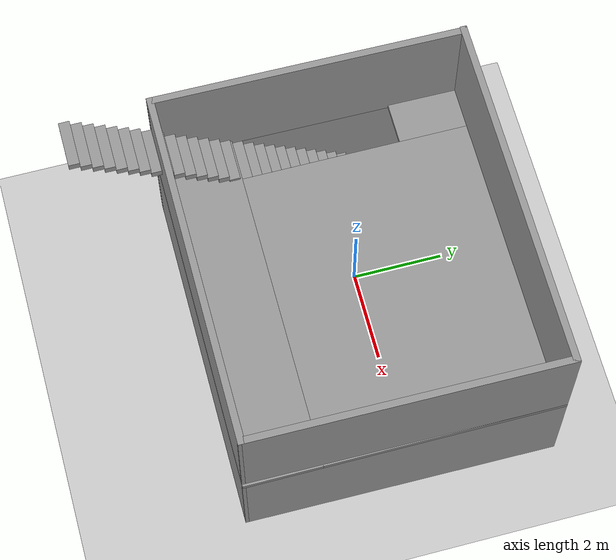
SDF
<sdf version="1.7">
 <world name="default">
  <light name="sun" type="directional">
   <pose>0 0 10 0 -0 0</pose>
   <diffuse>0.8 0.8 0.8 1</diffuse>
   <specular>0.2 0.2 0.2 1</specular>
   <attenuation>
    <range>1000</range>
    <constant>0.9</constant>
    <linear>0.01</linear>
    <quadratic>0.001</quadratic>
   </attenuation>
   <direction>-0.5 0.1 -0.9</direction>
   <spot><inner_angle>0</inner_angle><outer_angle>0</outer_angle><falloff>0</falloff></spot>
  </light>
  <model name="ground_plane">
   <static>1</static>
   <link name="link">
    <collision name="collision">
     <geometry><plane><normal>0 0 1</normal><size>100 100</size></plane></geometry>
     <surface>
      <contact><collide_bitmask>65535</collide_bitmask></contact>
      <friction><ode><mu>100</mu><mu2>50</mu2></ode></friction>
     </surface>
    </collision>
    <visual name="visual">
     <cast_shadows>0</cast_shadows>
     <geometry><plane><normal>0 0 1</normal><size>100 100</size></plane></geometry>
     <material>
      <script><uri>file://media/materials/scripts/gazebo.material</uri><name>Gazebo/Grey</name></script>
     </material>
    </visual>
   </link>
  </model>
  <gravity>0 0 -9.8</gravity>
  <magnetic_field>6e-06 2.3e-05 -4.2e-05</magnetic_field>
  <atmosphere type="adiabatic"/>
  <physics type="ode">
   <max_step_size>0.001</max_step_size>
   <real_time_factor>1</real_time_factor>
   <real_time_update_rate>1000</real_time_update_rate>
  </physics>
  <scene><ambient>0.4 0.4 0.4 1</ambient><background>0.7 0.7 0.7 1</background><shadows>1</shadows></scene>
  <spherical_coordinates>
   <surface_model>EARTH_WGS84</surface_model>
   <latitude_deg>0</latitude_deg>
   <longitude_deg>0</longitude_deg>
   <elevation>0</elevation>
   <heading_deg>0</heading_deg>
  </spherical_coordinates>
  <model name="Untitled">
   <pose>1.05675 -0.32363 0 0 -0 0</pose>
   <link name="Floor_0">
    <pose>0 0 2.5 0 -0 0</pose>
    <visual name="Floor_0_Visual_0">
     <pose>-3.84639 0 0.05 0 -0 0</pose>
     <geometry><box><size>0.11192 6.84394 0.1</size></box></geometry>
     <material>
      <script><uri>file://media/materials/scripts/gazebo.material</uri><name>Gazebo/Grey</name></script>
      <ambient>1 1 1 1</ambient>
     </material>
     <meta><layer>1</layer></meta>
    </visual>
    <collision name="Floor_0_Collision_0">
     <geometry><box><size>0.11192 6.84394 0.1</size></box></geometry>
     <pose>-3.84639 0 0.05 0 -0 0</pose>
    </collision>
    <visual name="Floor_0_Visual_1">
     <pose>0.05596 -2.57967 0.05 0 -0 0</pose>
     <geometry><box><size>7.69278 1.68459 0.1</size></box></geometry>
     <material>
      <script><uri>file://media/materials/scripts/gazebo.material</uri><name>Gazebo/Grey</name></script>
      <ambient>1 1 1 1</ambient>
     </material>
     <meta><layer>1</layer></meta>
    </visual>
    <collision name="Floor_0_Collision_1">
     <geometry><box><size>7.69278 1.68459 0.1</size></box></geometry>
     <pose>0.05596 -2.57967 0.05 0 -0 0</pose>
    </collision>
    <visual name="Floor_0_Visual_2">
     <pose>0.55596 0.842297 0.05 0 -0 0</pose>
     <geometry><box><size>6.69278 5.15934 0.1</size></box></geometry>
     <material>
      <script><uri>file://media/materials/scripts/gazebo.material</uri><name>Gazebo/Grey</name></script>
      <ambient>1 1 1 1</ambient>
     </material>
     <meta><layer>1</layer></meta>
    </visual>
    <collision name="Floor_0_Collision_2">
     <geometry><box><size>6.69278 5.15934 0.1</size></box></geometry>
     <pose>0.55596 0.842297 0.05 0 -0 0</pose>
    </collision>
    <visual name="Floor_0_Visual_3">
     <pose>-3.29043 2.5923 0.05 0 -0 0</pose>
     <geometry><box><size>1 1.65934 0.1</size></box></geometry>
     <material>
      <script><uri>file://media/materials/scripts/gazebo.material</uri><name>Gazebo/Grey</name></script>
      <ambient>1 1 1 1</ambient>
     </material>
     <meta><layer>1</layer></meta>
    </visual>
    <collision name="Floor_0_Collision_3">
     <geometry><box><size>1 1.65934 0.1</size></box></geometry>
     <pose>-3.29043 2.5923 0.05 0 -0 0</pose>
    </collision>
   </link>
   <link name="Stairs_0">
    <visual name="Stairs_0_Visual_0">
     <pose>-3.29043 1.64596 0.083333 0 -0 0</pose>
     <geometry><box><size>1 0.233333 0.166667</size></box></geometry>
     <material>
      <script><uri>file://media/materials/scripts/gazebo.material</uri><name>Gazebo/Grey</name></script>
      <ambient>1 1 1 1</ambient>
     </material>
     <meta><layer>0</layer></meta>
    </visual>
    <collision name="Stairs_0_Collision_0">
     <geometry><box><size>1 0.233333 0.166667</size></box></geometry>
     <pose>-3.29043 1.64596 0.083333 0 -0 0</pose>
    </collision>
    <visual name="Stairs_0_Visual_1">
     <pose>-3.29043 1.41263 0.25 0 -0 0</pose>
     <geometry><box><size>1 0.233333 0.166667</size></box></geometry>
     <material>
      <script><uri>file://media/materials/scripts/gazebo.material</uri><name>Gazebo/Grey</name></script>
      <ambient>1 1 1 1</ambient>
     </material>
     <meta><layer>0</layer></meta>
    </visual>
    <collision name="Stairs_0_Collision_1">
     <geometry><box><size>1 0.233333 0.166667</size></box></geometry>
     <pose>-3.29043 1.41263 0.25 0 -0 0</pose>
    </collision>
    <visual name="Stairs_0_Visual_2">
     <pose>-3.29043 1.17929 0.416667 0 -0 0</pose>
     <geometry><box><size>1 0.233333 0.166667</size></box></geometry>
     <material>
      <script><uri>file://media/materials/scripts/gazebo.material</uri><name>Gazebo/Grey</name></script>
      <ambient>1 1 1 1</ambient>
     </material>
     <meta><layer>0</layer></meta>
    </visual>
    <collision name="Stairs_0_Collision_2">
     <geometry><box><size>1 0.233333 0.166667</size></box></geometry>
     <pose>-3.29043 1.17929 0.416667 0 -0 0</pose>
    </collision>
    <visual name="Stairs_0_Visual_3">
     <pose>-3.29043 0.94596 0.583333 0 -0 0</pose>
     <geometry><box><size>1 0.233333 0.166667</size></box></geometry>
     <material>
      <script><uri>file://media/materials/scripts/gazebo.material</uri><name>Gazebo/Grey</name></script>
      <ambient>1 1 1 1</ambient>
     </material>
     <meta><layer>0</layer></meta>
    </visual>
    <collision name="Stairs_0_Collision_3">
     <geometry><box><size>1 0.233333 0.166667</size></box></geometry>
     <pose>-3.29043 0.94596 0.583333 0 -0 0</pose>
    </collision>
    <visual name="Stairs_0_Visual_4">
     <pose>-3.29043 0.712626 0.75 0 -0 0</pose>
     <geometry><box><size>1 0.233333 0.166667</size></box></geometry>
     <material>
      <script><uri>file://media/materials/scripts/gazebo.material</uri><name>Gazebo/Grey</name></script>
      <ambient>1 1 1 1</ambient>
     </material>
     <meta><layer>0</layer></meta>
    </visual>
    <collision name="Stairs_0_Collision_4">
     <geometry><box><size>1 0.233333 0.166667</size></box></geometry>
     <pose>-3.29043 0.712626 0.75 0 -0 0</pose>
    </collision>
    <visual name="Stairs_0_Visual_5">
     <pose>-3.29043 0.479293 0.916667 0 -0 0</pose>
     <geometry><box><size>1 0.233333 0.166667</size></box></geometry>
     <material>
      <script><uri>file://media/materials/scripts/gazebo.material</uri><name>Gazebo/Grey</name></script>
      <ambient>1 1 1 1</ambient>
     </material>
     <meta><layer>0</layer></meta>
    </visual>
    <collision name="Stairs_0_Collision_5">
     <geometry><box><size>1 0.233333 0.166667</size></box></geometry>
     <pose>-3.29043 0.479293 0.916667 0 -0 0</pose>
    </collision>
    <visual name="Stairs_0_Visual_6">
     <pose>-3.29043 0.24596 1.08333 0 -0 0</pose>
     <geometry><box><size>1 0.233333 0.166667</size></box></geometry>
     <material>
      <script><uri>file://media/materials/scripts/gazebo.material</uri><name>Gazebo/Grey</name></script>
      <ambient>1 1 1 1</ambient>
     </material>
     <meta><layer>0</layer></meta>
    </visual>
    <collision name="Stairs_0_Collision_6">
     <geometry><box><size>1 0.233333 0.166667</size></box></geometry>
     <pose>-3.29043 0.24596 1.08333 0 -0 0</pose>
    </collision>
    <visual name="Stairs_0_Visual_7">
     <pose>-3.29043 0.012626 1.25 0 -0 0</pose>
     <geometry><box><size>1 0.233333 0.166667</size></box></geometry>
     <material>
      <script><uri>file://media/materials/scripts/gazebo.material</uri><name>Gazebo/Grey</name></script>
      <ambient>1 1 1 1</ambient>
     </material>
     <meta><layer>0</layer></meta>
    </visual>
    <collision name="Stairs_0_Collision_7">
     <geometry><box><size>1 0.233333 0.166667</size></box></geometry>
     <pose>-3.29043 0.012626 1.25 0 -0 0</pose>
    </collision>
    <visual name="Stairs_0_Visual_8">
     <pose>-3.29043 -0.220707 1.41667 0 -0 0</pose>
     <geometry><box><size>1 0.233333 0.166667</size></box></geometry>
     <material>
      <script><uri>file://media/materials/scripts/gazebo.material</uri><name>Gazebo/Grey</name></script>
      <ambient>1 1 1 1</ambient>
     </material>
     <meta><layer>0</layer></meta>
    </visual>
    <collision name="Stairs_0_Collision_8">
     <geometry><box><size>1 0.233333 0.166667</size></box></geometry>
     <pose>-3.29043 -0.220707 1.41667 0 -0 0</pose>
    </collision>
    <visual name="Stairs_0_Visual_9">
     <pose>-3.29043 -0.45404 1.58333 0 -0 0</pose>
     <geometry><box><size>1 0.233333 0.166667</size></box></geometry>
     <material>
      <script><uri>file://media/materials/scripts/gazebo.material</uri><name>Gazebo/Grey</name></script>
      <ambient>1 1 1 1</ambient>
     </material>
     <meta><layer>0</layer></meta>
    </visual>
    <collision name="Stairs_0_Collision_9">
     <geometry><box><size>1 0.233333 0.166667</size></box></geometry>
     <pose>-3.29043 -0.45404 1.58333 0 -0 0</pose>
    </collision>
    <visual name="Stairs_0_Visual_10">
     <pose>-3.29043 -0.687374 1.75 0 -0 0</pose>
     <geometry><box><size>1 0.233333 0.166667</size></box></geometry>
     <material>
      <script><uri>file://media/materials/scripts/gazebo.material</uri><name>Gazebo/Grey</name></script>
      <ambient>1 1 1 1</ambient>
     </material>
     <meta><layer>0</layer></meta>
    </visual>
    <collision name="Stairs_0_Collision_10">
     <geometry><box><size>1 0.233333 0.166667</size></box></geometry>
     <pose>-3.29043 -0.687374 1.75 0 -0 0</pose>
    </collision>
    <visual name="Stairs_0_Visual_11">
     <pose>-3.29043 -0.920707 1.91667 0 -0 0</pose>
     <geometry><box><size>1 0.233333 0.166667</size></box></geometry>
     <material>
      <script><uri>file://media/materials/scripts/gazebo.material</uri><name>Gazebo/Grey</name></script>
      <ambient>1 1 1 1</ambient>
     </material>
     <meta><layer>0</layer></meta>
    </visual>
    <collision name="Stairs_0_Collision_11">
     <geometry><box><size>1 0.233333 0.166667</size></box></geometry>
     <pose>-3.29043 -0.920707 1.91667 0 -0 0</pose>
    </collision>
    <visual name="Stairs_0_Visual_12">
     <pose>-3.29043 -1.15404 2.08333 0 -0 0</pose>
     <geometry><box><size>1 0.233333 0.166667</size></box></geometry>
     <material>
      <script><uri>file://media/materials/scripts/gazebo.material</uri><name>Gazebo/Grey</name></script>
      <ambient>1 1 1 1</ambient>
     </material>
     <meta><layer>0</layer></meta>
    </visual>
    <collision name="Stairs_0_Collision_12">
     <geometry><box><size>1 0.233333 0.166667</size></box></geometry>
     <pose>-3.29043 -1.15404 2.08333 0 -0 0</pose>
    </collision>
    <visual name="Stairs_0_Visual_13">
     <pose>-3.29043 -1.38737 2.25 0 -0 0</pose>
     <geometry><box><size>1 0.233333 0.166667</size></box></geometry>
     <material>
      <script><uri>file://media/materials/scripts/gazebo.material</uri><name>Gazebo/Grey</name></script>
      <ambient>1 1 1 1</ambient>
     </material>
     <meta><layer>0</layer></meta>
    </visual>
    <collision name="Stairs_0_Collision_13">
     <geometry><box><size>1 0.233333 0.166667</size></box></geometry>
     <pose>-3.29043 -1.38737 2.25 0 -0 0</pose>
    </collision>
    <visual name="Stairs_0_Visual_14">
     <pose>-3.29043 -1.62071 2.41667 0 -0 0</pose>
     <geometry><box><size>1 0.233333 0.166667</size></box></geometry>
     <material>
      <script><uri>file://media/materials/scripts/gazebo.material</uri><name>Gazebo/Grey</name></script>
      <ambient>1 1 1 1</ambient>
     </material>
     <meta><layer>0</layer></meta>
    </visual>
    <collision name="Stairs_0_Collision_14">
     <geometry><box><size>1 0.233333 0.166667</size></box></geometry>
     <pose>-3.29043 -1.62071 2.41667 0 -0 0</pose>
    </collision>
   </link>
   <link name="Stairs_1">
    <visual name="Stairs_1_Visual_0">
     <pose>-3.29844 -1.89443 2.58333 0 -0 0</pose>
     <geometry><box><size>1 0.233333 0.166667</size></box></geometry>
     <material>
      <script><uri>file://media/materials/scripts/gazebo.material</uri><name>Gazebo/Grey</name></script>
      <ambient>1 1 1 1</ambient>
     </material>
     <meta><layer>1</layer></meta>
    </visual>
    <collision name="Stairs_1_Collision_0">
     <geometry><box><size>1 0.233333 0.166667</size></box></geometry>
     <pose>-3.29844 -1.89443 2.58333 0 -0 0</pose>
    </collision>
    <visual name="Stairs_1_Visual_1">
     <pose>-3.29844 -2.12776 2.75 0 -0 0</pose>
     <geometry><box><size>1 0.233333 0.166667</size></box></geometry>
     <material>
      <script><uri>file://media/materials/scripts/gazebo.material</uri><name>Gazebo/Grey</name></script>
      <ambient>1 1 1 1</ambient>
     </material>
     <meta><layer>1</layer></meta>
    </visual>
    <collision name="Stairs_1_Collision_1">
     <geometry><box><size>1 0.233333 0.166667</size></box></geometry>
     <pose>-3.29844 -2.12776 2.75 0 -0 0</pose>
    </collision>
    <visual name="Stairs_1_Visual_2">
     <pose>-3.29844 -2.36109 2.91667 0 -0 0</pose>
     <geometry><box><size>1 0.233333 0.166667</size></box></geometry>
     <material>
      <script><uri>file://media/materials/scripts/gazebo.material</uri><name>Gazebo/Grey</name></script>
      <ambient>1 1 1 1</ambient>
     </material>
     <meta><layer>1</layer></meta>
    </visual>
    <collision name="Stairs_1_Collision_2">
     <geometry><box><size>1 0.233333 0.166667</size></box></geometry>
     <pose>-3.29844 -2.36109 2.91667 0 -0 0</pose>
    </collision>
    <visual name="Stairs_1_Visual_3">
     <pose>-3.29844 -2.59443 3.08333 0 -0 0</pose>
     <geometry><box><size>1 0.233333 0.166667</size></box></geometry>
     <material>
      <script><uri>file://media/materials/scripts/gazebo.material</uri><name>Gazebo/Grey</name></script>
      <ambient>1 1 1 1</ambient>
     </material>
     <meta><layer>1</layer></meta>
    </visual>
    <collision name="Stairs_1_Collision_3">
     <geometry><box><size>1 0.233333 0.166667</size></box></geometry>
     <pose>-3.29844 -2.59443 3.08333 0 -0 0</pose>
    </collision>
    <visual name="Stairs_1_Visual_4">
     <pose>-3.29844 -2.82776 3.25 0 -0 0</pose>
     <geometry><box><size>1 0.233333 0.166667</size></box></geometry>
     <material>
      <script><uri>file://media/materials/scripts/gazebo.material</uri><name>Gazebo/Grey</name></script>
      <ambient>1 1 1 1</ambient>
     </material>
     <meta><layer>1</layer></meta>
    </visual>
    <collision name="Stairs_1_Collision_4">
     <geometry><box><size>1 0.233333 0.166667</size></box></geometry>
     <pose>-3.29844 -2.82776 3.25 0 -0 0</pose>
    </collision>
    <visual name="Stairs_1_Visual_5">
     <pose>-3.29844 -3.06109 3.41667 0 -0 0</pose>
     <geometry><box><size>1 0.233333 0.166667</size></box></geometry>
     <material>
      <script><uri>file://media/materials/scripts/gazebo.material</uri><name>Gazebo/Grey</name></script>
      <ambient>1 1 1 1</ambient>
     </material>
     <meta><layer>1</layer></meta>
    </visual>
    <collision name="Stairs_1_Collision_5">
     <geometry><box><size>1 0.233333 0.166667</size></box></geometry>
     <pose>-3.29844 -3.06109 3.41667 0 -0 0</pose>
    </collision>
    <visual name="Stairs_1_Visual_6">
     <pose>-3.29844 -3.29443 3.58333 0 -0 0</pose>
     <geometry><box><size>1 0.233333 0.166667</size></box></geometry>
     <material>
      <script><uri>file://media/materials/scripts/gazebo.material</uri><name>Gazebo/Grey</name></script>
      <ambient>1 1 1 1</ambient>
     </material>
     <meta><layer>1</layer></meta>
    </visual>
    <collision name="Stairs_1_Collision_6">
     <geometry><box><size>1 0.233333 0.166667</size></box></geometry>
     <pose>-3.29844 -3.29443 3.58333 0 -0 0</pose>
    </collision>
    <visual name="Stairs_1_Visual_7">
     <pose>-3.29844 -3.52776 3.75 0 -0 0</pose>
     <geometry><box><size>1 0.233333 0.166667</size></box></geometry>
     <material>
      <script><uri>file://media/materials/scripts/gazebo.material</uri><name>Gazebo/Grey</name></script>
      <ambient>1 1 1 1</ambient>
     </material>
     <meta><layer>1</layer></meta>
    </visual>
    <collision name="Stairs_1_Collision_7">
     <geometry><box><size>1 0.233333 0.166667</size></box></geometry>
     <pose>-3.29844 -3.52776 3.75 0 -0 0</pose>
    </collision>
    <visual name="Stairs_1_Visual_8">
     <pose>-3.29844 -3.76109 3.91667 0 -0 0</pose>
     <geometry><box><size>1 0.233333 0.166667</size></box></geometry>
     <material>
      <script><uri>file://media/materials/scripts/gazebo.material</uri><name>Gazebo/Grey</name></script>
      <ambient>1 1 1 1</ambient>
     </material>
     <meta><layer>1</layer></meta>
    </visual>
    <collision name="Stairs_1_Collision_8">
     <geometry><box><size>1 0.233333 0.166667</size></box></geometry>
     <pose>-3.29844 -3.76109 3.91667 0 -0 0</pose>
    </collision>
    <visual name="Stairs_1_Visual_9">
     <pose>-3.29844 -3.99443 4.08333 0 -0 0</pose>
     <geometry><box><size>1 0.233333 0.166667</size></box></geometry>
     <material>
      <script><uri>file://media/materials/scripts/gazebo.material</uri><name>Gazebo/Grey</name></script>
      <ambient>1 1 1 1</ambient>
     </material>
     <meta><layer>1</layer></meta>
    </visual>
    <collision name="Stairs_1_Collision_9">
     <geometry><box><size>1 0.233333 0.166667</size></box></geometry>
     <pose>-3.29844 -3.99443 4.08333 0 -0 0</pose>
    </collision>
    <visual name="Stairs_1_Visual_10">
     <pose>-3.29844 -4.22776 4.25 0 -0 0</pose>
     <geometry><box><size>1 0.233333 0.166667</size></box></geometry>
     <material>
      <script><uri>file://media/materials/scripts/gazebo.material</uri><name>Gazebo/Grey</name></script>
      <ambient>1 1 1 1</ambient>
     </material>
     <meta><layer>1</layer></meta>
    </visual>
    <collision name="Stairs_1_Collision_10">
     <geometry><box><size>1 0.233333 0.166667</size></box></geometry>
     <pose>-3.29844 -4.22776 4.25 0 -0 0</pose>
    </collision>
    <visual name="Stairs_1_Visual_11">
     <pose>-3.29844 -4.46109 4.41667 0 -0 0</pose>
     <geometry><box><size>1 0.233333 0.166667</size></box></geometry>
     <material>
      <script><uri>file://media/materials/scripts/gazebo.material</uri><name>Gazebo/Grey</name></script>
      <ambient>1 1 1 1</ambient>
     </material>
     <meta><layer>1</layer></meta>
    </visual>
    <collision name="Stairs_1_Collision_11">
     <geometry><box><size>1 0.233333 0.166667</size></box></geometry>
     <pose>-3.29844 -4.46109 4.41667 0 -0 0</pose>
    </collision>
    <visual name="Stairs_1_Visual_12">
     <pose>-3.29844 -4.69443 4.58333 0 -0 0</pose>
     <geometry><box><size>1 0.233333 0.166667</size></box></geometry>
     <material>
      <script><uri>file://media/materials/scripts/gazebo.material</uri><name>Gazebo/Grey</name></script>
      <ambient>1 1 1 1</ambient>
     </material>
     <meta><layer>1</layer></meta>
    </visual>
    <collision name="Stairs_1_Collision_12">
     <geometry><box><size>1 0.233333 0.166667</size></box></geometry>
     <pose>-3.29844 -4.69443 4.58333 0 -0 0</pose>
    </collision>
    <visual name="Stairs_1_Visual_13">
     <pose>-3.29844 -4.92776 4.75 0 -0 0</pose>
     <geometry><box><size>1 0.233333 0.166667</size></box></geometry>
     <material>
      <script><uri>file://media/materials/scripts/gazebo.material</uri><name>Gazebo/Grey</name></script>
      <ambient>1 1 1 1</ambient>
     </material>
     <meta><layer>1</layer></meta>
    </visual>
    <collision name="Stairs_1_Collision_13">
     <geometry><box><size>1 0.233333 0.166667</size></box></geometry>
     <pose>-3.29844 -4.92776 4.75 0 -0 0</pose>
    </collision>
    <visual name="Stairs_1_Visual_14">
     <pose>-3.29844 -5.16109 4.91667 0 -0 0</pose>
     <geometry><box><size>1 0.233333 0.166667</size></box></geometry>
     <material>
      <script><uri>file://media/materials/scripts/gazebo.material</uri><name>Gazebo/Grey</name></script>
      <ambient>1 1 1 1</ambient>
     </material>
     <meta><layer>1</layer></meta>
    </visual>
    <collision name="Stairs_1_Collision_14">
     <geometry><box><size>1 0.233333 0.166667</size></box></geometry>
     <pose>-3.29844 -5.16109 4.91667 0 -0 0</pose>
    </collision>
   </link>
   <link name="Wall_0">
    <collision name="Wall_0_Collision">
     <geometry><box><size>6.84275 0.15 2.5</size></box></geometry>
     <pose>0 0 1.25 0 -0 0</pose>
    </collision>
    <visual name="Wall_0_Visual">
     <pose>0 0 1.25 0 -0 0</pose>
     <geometry><box><size>6.84275 0.15 2.5</size></box></geometry>
     <material>
      <script><uri>file://media/materials/scripts/gazebo.material</uri><name>Gazebo/Grey</name></script>
      <ambient>1 1 1 1</ambient>
     </material>
     <meta><layer>0</layer></meta>
    </visual>
    <pose>-3.8 0 0 0 -0 -1.57879</pose>
   </link>
   <link name="Wall_1">
    <collision name="Wall_1_Collision">
     <geometry><box><size>7.75 0.15 2.5</size></box></geometry>
     <pose>0 0 1.25 0 -0 0</pose>
    </collision>
    <visual name="Wall_1_Visual">
     <pose>0 0 1.25 0 -0 0</pose>
     <geometry><box><size>7.75 0.15 2.5</size></box></geometry>
     <material>
      <script><uri>file://media/materials/scripts/gazebo.material</uri><name>Gazebo/Grey</name></script>
      <ambient>1 1 1 1</ambient>
     </material>
     <meta><layer>0</layer></meta>
    </visual>
    <pose>-0.026751 -3.34637 0 0 -0 0</pose>
   </link>
   <link name="Wall_10">
    <collision name="Wall_10_Collision">
     <geometry><box><size>2.5 0.15 2.5</size></box></geometry>
     <pose>0 0 1.25 0 -0 0</pose>
    </collision>
    <visual name="Wall_10_Visual">
     <pose>0 0 1.25 0 -0 0</pose>
     <geometry><box><size>2.5 0.15 2.5</size></box></geometry>
     <material>
      <script><uri>file://media/materials/scripts/gazebo.material</uri><name>Gazebo/Grey</name></script>
      <ambient>1 1 1 1</ambient>
     </material>
     <meta><layer>0</layer></meta>
    </visual>
    <pose>-0.228429 0.951973 0 0 -0 0</pose>
   </link>
   <link name="Wall_11">
    <collision name="Wall_11_Collision">
     <geometry><box><size>2.5 0.15 2.5</size></box></geometry>
     <pose>0 0 1.25 0 -0 0</pose>
    </collision>
    <visual name="Wall_11_Visual">
     <pose>0 0 1.25 0 -0 0</pose>
     <geometry><box><size>2.5 0.15 2.5</size></box></geometry>
     <material>
      <script><uri>file://media/materials/scripts/gazebo.material</uri><name>Gazebo/Grey</name></script>
      <ambient>1 1 1 1</ambient>
     </material>
     <meta><layer>0</layer></meta>
    </visual>
    <pose>0.946571 -0.223027 0 0 -0 -1.5708</pose>
   </link>
   <link name="Wall_12">
    <collision name="Wall_12_Collision">
     <geometry><box><size>1.5 0.15 2.5</size></box></geometry>
     <pose>0 0 1.25 0 -0 0</pose>
    </collision>
    <visual name="Wall_12_Visual">
     <pose>0 0 1.25 0 -0 0</pose>
     <geometry><box><size>1.5 0.15 2.5</size></box></geometry>
     <material>
      <script><uri>file://media/materials/scripts/gazebo.material</uri><name>Gazebo/Grey</name></script>
      <ambient>1 1 1 1</ambient>
     </material>
     <meta><layer>0</layer></meta>
    </visual>
    <pose>0.271571 -1.39803 0 0 -0 3.14159</pose>
   </link>
   <link name="Wall_13">
    <collision name="Wall_13_Collision">
     <geometry><box><size>1.25 0.15 2.5</size></box></geometry>
     <pose>0 0 1.25 0 -0 0</pose>
    </collision>
    <visual name="Wall_13_Visual">
     <pose>0 0 1.25 0 -0 0</pose>
     <geometry><box><size>1.25 0.15 2.5</size></box></geometry>
     <material>
      <script><uri>file://media/materials/scripts/gazebo.material</uri><name>Gazebo/Grey</name></script>
      <ambient>1 1 1 1</ambient>
     </material>
     <meta><layer>0</layer></meta>
    </visual>
    <pose>-0.403429 -0.848027 0 0 -0 1.5708</pose>
   </link>
   <link name="Wall_2">
    <collision name="Wall_2_Collision">
     <geometry><box><size>6.84275 0.15 2.5</size></box></geometry>
     <pose>0 0 1.25 0 -0 0</pose>
    </collision>
    <visual name="Wall_2_Visual">
     <pose>0 0 1.25 0 -0 0</pose>
     <geometry><box><size>6.84275 0.15 2.5</size></box></geometry>
     <material>
      <script><uri>file://media/materials/scripts/gazebo.material</uri><name>Gazebo/Grey</name></script>
      <ambient>1 1 1 1</ambient>
     </material>
     <meta><layer>0</layer></meta>
    </visual>
    <pose>3.8 0 0 0 -0 1.5628</pose>
   </link>
   <link name="Wall_3">
    <pose>0.006638 3.34637 0 0 -0 3.14159</pose>
    <visual name="Wall_3_Visual_0">
     <pose>-0.740069 0 1.25 0 -0 0</pose>
     <geometry><box><size>6.26986 0.15 2.5</size></box></geometry>
     <material>
      <script><uri>file://media/materials/scripts/gazebo.material</uri><name>Gazebo/Grey</name></script>
      <ambient>1 1 1 1</ambient>
     </material>
     <meta><layer>0</layer></meta>
    </visual>
    <collision name="Wall_3_Collision_0">
     <geometry><box><size>6.26986 0.15 2.5</size></box></geometry>
     <pose>-0.740069 0 1.25 0 -0 0</pose>
    </collision>
    <visual name="Wall_3_Visual_1">
     <pose>3.58493 0 1.25 0 -0 0</pose>
     <geometry><box><size>0.580137 0.15 2.5</size></box></geometry>
     <material>
      <script><uri>file://media/materials/scripts/gazebo.material</uri><name>Gazebo/Grey</name></script>
      <ambient>1 1 1 1</ambient>
     </material>
     <meta><layer>0</layer></meta>
    </visual>
    <collision name="Wall_3_Collision_1">
     <geometry><box><size>0.580137 0.15 2.5</size></box></geometry>
     <pose>3.58493 0 1.25 0 -0 0</pose>
    </collision>
    <visual name="Wall_3_Visual_2">
     <pose>2.84486 0 2.25 0 -0 0</pose>
     <geometry><box><size>0.9 0.15 0.5</size></box></geometry>
     <material>
      <script><uri>file://media/materials/scripts/gazebo.material</uri><name>Gazebo/Grey</name></script>
      <ambient>1 1 1 1</ambient>
     </material>
     <meta><layer>0</layer></meta>
    </visual>
    <collision name="Wall_3_Collision_2">
     <geometry><box><size>0.9 0.15 0.5</size></box></geometry>
     <pose>2.84486 0 2.25 0 -0 0</pose>
    </collision>
   </link>
   <link name="Wall_6">
    <collision name="Wall_6_Collision">
     <geometry><box><size>6.84295 0.15 2.5</size></box></geometry>
     <pose>0 0 1.25 0 -0 0</pose>
    </collision>
    <visual name="Wall_6_Visual">
     <pose>0 0 1.25 0 -0 0</pose>
     <geometry><box><size>6.84295 0.15 2.5</size></box></geometry>
     <material>
      <script><uri>file://media/materials/scripts/gazebo.material</uri><name>Gazebo/Grey</name></script>
      <ambient>1 1 1 1</ambient>
     </material>
     <meta><layer>1</layer></meta>
    </visual>
    <pose>-3.8 0 2.5 0 -0 -1.57879</pose>
   </link>
   <link name="Wall_7">
    <collision name="Wall_7_Collision">
     <geometry><box><size>7.75 0.15 2.5</size></box></geometry>
     <pose>0 0 1.25 0 -0 0</pose>
    </collision>
    <visual name="Wall_7_Visual">
     <pose>0 0 1.25 0 -0 0</pose>
     <geometry><box><size>7.75 0.15 2.5</size></box></geometry>
     <material>
      <script><uri>file://media/materials/scripts/gazebo.material</uri><name>Gazebo/Grey</name></script>
      <ambient>1 1 1 1</ambient>
     </material>
     <meta><layer>1</layer></meta>
    </visual>
    <pose>-0.026751 -3.34637 2.5 0 -0 0</pose>
   </link>
   <link name="Wall_8">
    <collision name="Wall_8_Collision">
     <geometry><box><size>6.84295 0.15 2.5</size></box></geometry>
     <pose>0 0 1.25 0 -0 0</pose>
    </collision>
    <visual name="Wall_8_Visual">
     <pose>0 0 1.25 0 -0 0</pose>
     <geometry><box><size>6.84295 0.15 2.5</size></box></geometry>
     <material>
      <script><uri>file://media/materials/scripts/gazebo.material</uri><name>Gazebo/Grey</name></script>
      <ambient>1 1 1 1</ambient>
     </material>
     <meta><layer>1</layer></meta>
    </visual>
    <pose>3.8 0 2.5 0 -0 1.5628</pose>
   </link>
   <link name="Wall_9">
    <collision name="Wall_9_Collision">
     <geometry><box><size>7.75 0.15 2.5</size></box></geometry>
     <pose>0 0 1.25 0 -0 0</pose>
    </collision>
    <visual name="Wall_9_Visual">
     <pose>0 0 1.25 0 -0 0</pose>
     <geometry><box><size>7.75 0.15 2.5</size></box></geometry>
     <material>
      <script><uri>file://media/materials/scripts/gazebo.material</uri><name>Gazebo/Grey</name></script>
      <ambient>1 1 1 1</ambient>
     </material>
     <meta><layer>1</layer></meta>
    </visual>
    <pose>0.006638 3.34637 2.5 0 -0 3.14159</pose>
   </link>
   <static>1</static>
  </model>
 </world>
</sdf>
